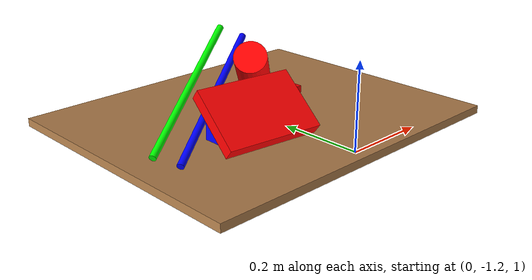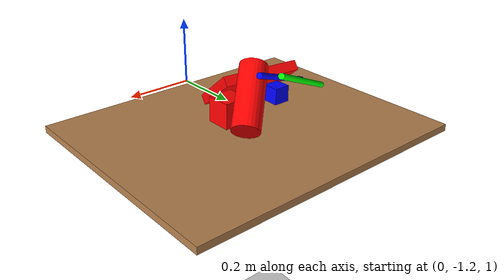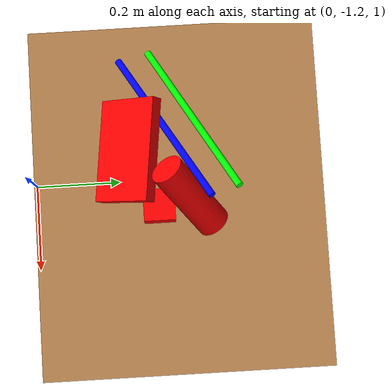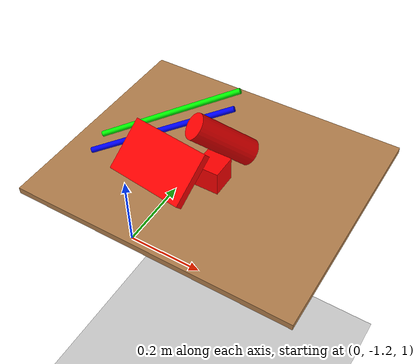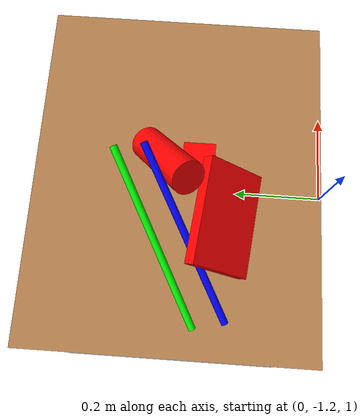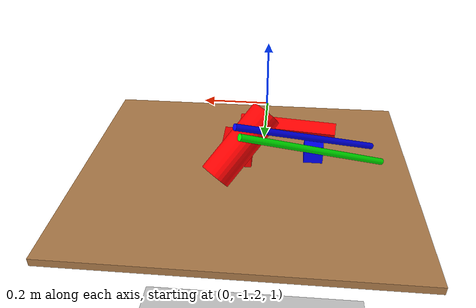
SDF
<sdf version="1.7">
 <world name="default">
  <model name="ground_plane">
   <static>1</static>
   <link name="link">
    <collision name="collision">
     <geometry><plane><normal>0 0 1</normal><size>100 100</size></plane></geometry>
     <surface><friction><ode><mu>100</mu><mu2>50</mu2></ode></friction></surface>
    </collision>
    <visual name="visual">
     <cast_shadows>0</cast_shadows>
     <geometry><plane><normal>0 0 1</normal><size>100 100</size></plane></geometry>
     <material>
      <script><uri>file://media/materials/scripts/gazebo.material</uri><name>Gazebo/Grey</name></script>
     </material>
    </visual>
   </link>
  </model>
  <model name="cube_b">
   <link name="link_2">
    <inertial>
     <mass>2</mass>
     <inertia>
      <ixx>0.00083333</ixx>
      <ixy>0</ixy>
      <ixz>0</ixz>
      <iyy>0.00083333</iyy>
      <iyz>0</iyz>
      <izz>0.00083333</izz>
     </inertia>
    </inertial>
    <visual name="visual">
     <geometry><box><size>0.05 0.05 0.05</size></box></geometry>
     <material>
      <lighting>1</lighting>
      <script><uri>file://media/materials/scripts/gazebo.material</uri><name>Gazebo/Grey</name></script>
      <ambient>0 0 1 1</ambient>
      <diffuse>0 0 1 1</diffuse>
      <specular>0 0 0 1</specular>
      <emissive>0 0 0 1</emissive>
      <shader type="vertex"><normal_map>__default__</normal_map></shader>
     </material>
    </visual>
    <collision name="collision">
     <geometry><box><size>0.05 0.05 0.05</size></box></geometry>
     <surface>
      <friction>
       <ode><mu>0.8</mu><mu2>0.8</mu2><fdir1>0 0 0</fdir1><slip1>0</slip1><slip2>0</slip2></ode>
       <torsional>
        <coefficient>1</coefficient>
        <patch_radius>0</patch_radius>
        <surface_radius>0</surface_radius>
        <use_patch_radius>1</use_patch_radius>
        <ode><slip>0</slip></ode>
       </torsional>
      </friction>
      <bounce><restitution_coefficient>0</restitution_coefficient><threshold>1e+06</threshold></bounce>
      <contact>
       <collide_without_contact>0</collide_without_contact>
       <collide_without_contact_bitmask>1</collide_without_contact_bitmask>
       <collide_bitmask>1</collide_bitmask>
       <ode>
        <soft_cfm>0.0001</soft_cfm>
        <soft_erp>0.4</soft_erp>
        <kp>1e+06</kp>
        <kd>10</kd>
        <max_vel>0.01</max_vel>
        <min_depth>0</min_depth>
       </ode>
      </contact>
     </surface>
    </collision>
   </link>
   <static>0</static>
   <allow_auto_disable>0</allow_auto_disable>
   <pose>-0.135099 -0.93034 1.00993 -1.56964 -0.004147 -0.007441</pose>
  </model>
  <model name="cube_r">
   <link name="link_2">
    <inertial>
     <mass>2</mass>
     <inertia>
      <ixx>0.001875</ixx>
      <ixy>0</ixy>
      <ixz>0</ixz>
      <iyy>0.001875</iyy>
      <iyz>0</iyz>
      <izz>0.001875</izz>
     </inertia>
    </inertial>
    <visual name="visual">
     <geometry><box><size>0.075 0.075 0.075</size></box></geometry>
     <material>
      <lighting>1</lighting>
      <script><uri>file://media/materials/scripts/gazebo.material</uri><name>Gazebo/Grey</name></script>
      <ambient>1 0 0 1</ambient>
      <diffuse>1 0 0 1</diffuse>
      <specular>0 0 0 1</specular>
      <emissive>0 0 0 1</emissive>
      <shader type="vertex"><normal_map>__default__</normal_map></shader>
     </material>
    </visual>
    <collision name="collision">
     <geometry><box><size>0.075 0.075 0.075</size></box></geometry>
     <surface>
      <friction>
       <ode><mu>0.8</mu><mu2>0.8</mu2><fdir1>0 0 0</fdir1><slip1>0</slip1><slip2>0</slip2></ode>
       <torsional>
        <coefficient>1</coefficient>
        <patch_radius>0</patch_radius>
        <surface_radius>0</surface_radius>
        <use_patch_radius>1</use_patch_radius>
        <ode><slip>0</slip></ode>
       </torsional>
      </friction>
      <bounce><restitution_coefficient>0</restitution_coefficient><threshold>1e+06</threshold></bounce>
      <contact>
       <collide_without_contact>0</collide_without_contact>
       <collide_without_contact_bitmask>1</collide_without_contact_bitmask>
       <collide_bitmask>1</collide_bitmask>
       <ode>
        <soft_cfm>0.0001</soft_cfm>
        <soft_erp>0.4</soft_erp>
        <kp>1e+06</kp>
        <kd>10</kd>
        <max_vel>0.01</max_vel>
        <min_depth>0</min_depth>
       </ode>
      </contact>
     </surface>
    </collision>
   </link>
   <static>0</static>
   <allow_auto_disable>0</allow_auto_disable>
   <pose>0.064542 -0.908899 1.02328 1.56663 -0.001117 1.5713</pose>
  </model>
  <model name="cylinder_r">
   <link name="link_0">
    <inertial>
     <mass>0.2</mass>
     <inertia>
      <ixx>0.000747</ixx>
      <ixy>0</ixy>
      <ixz>0</ixz>
      <iyy>0.000747</iyy>
      <iyz>0</iyz>
      <izz>0.00016</izz>
     </inertia>
    </inertial>
    <visual name="visual">
     <geometry><cylinder><radius>0.04</radius><length>0.2</length></cylinder></geometry>
     <material>
      <lighting>1</lighting>
      <script><uri>file://media/materials/scripts/gazebo.material</uri><name>Gazebo/Grey</name></script>
      <ambient>1 0 0 1</ambient>
      <diffuse>1 0 0 1</diffuse>
      <specular>0 0 0 1</specular>
      <emissive>0 0 0 1</emissive>
      <shader type="vertex"><normal_map>__default__</normal_map></shader>
     </material>
    </visual>
    <collision name="collision">
     <geometry><cylinder><radius>0.04</radius><length>0.2</length></cylinder></geometry>
     <surface>
      <friction>
       <ode><mu>0.5</mu><mu2>0.5</mu2><fdir1>0 0 0</fdir1><slip1>0</slip1><slip2>0</slip2></ode>
       <torsional>
        <coefficient>1</coefficient>
        <patch_radius>0</patch_radius>
        <surface_radius>0</surface_radius>
        <use_patch_radius>1</use_patch_radius>
        <ode><slip>0</slip></ode>
       </torsional>
      </friction>
      <bounce><restitution_coefficient>0</restitution_coefficient><threshold>1e+06</threshold></bounce>
      <contact>
       <collide_without_contact>0</collide_without_contact>
       <collide_without_contact_bitmask>1</collide_without_contact_bitmask>
       <collide_bitmask>1</collide_bitmask>
       <ode>
        <soft_cfm>0.0001</soft_cfm>
        <soft_erp>0.4</soft_erp>
        <kp>1e+06</kp>
        <kd>10</kd>
        <max_vel>0.01</max_vel>
        <min_depth>0</min_depth>
       </ode>
      </contact>
     </surface>
    </collision>
   </link>
   <static>0</static>
   <allow_auto_disable>0</allow_auto_disable>
   <pose>0.051241 -0.834675 1.07921 -0.903309 -0.078543 2.2357</pose>
  </model>
  <model name="cylinder_b">
   <link name="link_0">
    <inertial>
     <mass>0.2</mass>
     <inertia><ixx>0.00331</ixx><ixy>0</ixy><ixz>0</ixz><iyy>0.00331</iyy><iyz>0</iyz><izz>7.11e-06</izz></inertia>
    </inertial>
    <visual name="visual">
     <geometry><cylinder><radius>0.00843157</radius><length>0.445034</length></cylinder></geometry>
     <material>
      <lighting>1</lighting>
      <ambient>0 0 1 1</ambient>
      <diffuse>0 0 1 1</diffuse>
      <specular>0.1 0.1 0.1 1</specular>
      <emissive>0 0 0 1</emissive>
      <shader type="vertex"><normal_map>__default__</normal_map></shader>
     </material>
    </visual>
    <collision name="collision">
     <geometry><cylinder><radius>0.008432</radius><length>0.445034</length></cylinder></geometry>
     <surface>
      <friction>
       <ode><mu>0.4</mu><mu2>0.4</mu2><fdir1>0 0 0</fdir1><slip1>0</slip1><slip2>0</slip2></ode>
       <torsional>
        <coefficient>1</coefficient>
        <patch_radius>0</patch_radius>
        <surface_radius>0</surface_radius>
        <use_patch_radius>1</use_patch_radius>
        <ode><slip>0</slip></ode>
       </torsional>
      </friction>
      <bounce><restitution_coefficient>0</restitution_coefficient><threshold>1e+06</threshold></bounce>
      <contact>
       <collide_without_contact>0</collide_without_contact>
       <collide_without_contact_bitmask>1</collide_without_contact_bitmask>
       <collide_bitmask>1</collide_bitmask>
       <ode>
        <soft_cfm>0.0001</soft_cfm>
        <soft_erp>0.4</soft_erp>
        <kp>1e+06</kp>
        <kd>10</kd>
        <max_vel>0.01</max_vel>
        <min_depth>0</min_depth>
       </ode>
      </contact>
     </surface>
    </collision>
   </link>
   <static>0</static>
   <allow_auto_disable>0</allow_auto_disable>
   <pose>-0.11941 -0.888291 1.07566 -1.99041 -0.395624 2.25549</pose>
  </model>
  <model name="cylinder_g">
   <link name="link_0">
    <inertial>
     <mass>0.2</mass>
     <inertia><ixx>0.00331</ixx><ixy>0</ixy><ixz>0</ixz><iyy>0.00331</iyy><iyz>0</iyz><izz>7.11e-06</izz></inertia>
    </inertial>
    <visual name="visual">
     <geometry><cylinder><radius>0.00843157</radius><length>0.445034</length></cylinder></geometry>
     <material>
      <lighting>1</lighting>
      <ambient>0 1 0 1</ambient>
      <diffuse>0 1 0 1</diffuse>
      <specular>0.1 0.1 0.1 1</specular>
      <emissive>0 0 0 1</emissive>
      <shader type="vertex"><normal_map>__default__</normal_map></shader>
     </material>
    </visual>
    <collision name="collision">
     <geometry><cylinder><radius>0.008432</radius><length>0.445034</length></cylinder></geometry>
     <surface>
      <friction>
       <ode><mu>0.5</mu><mu2>0.5</mu2><fdir1>0 0 0</fdir1><slip1>0</slip1><slip2>0</slip2></ode>
       <torsional>
        <coefficient>1</coefficient>
        <patch_radius>0</patch_radius>
        <surface_radius>0</surface_radius>
        <use_patch_radius>1</use_patch_radius>
        <ode><slip>0</slip></ode>
       </torsional>
      </friction>
      <bounce><restitution_coefficient>0</restitution_coefficient><threshold>1e+06</threshold></bounce>
      <contact>
       <collide_without_contact>0</collide_without_contact>
       <collide_without_contact_bitmask>1</collide_without_contact_bitmask>
       <collide_bitmask>1</collide_bitmask>
       <ode>
        <soft_cfm>0.0001</soft_cfm>
        <soft_erp>0.4</soft_erp>
        <kp>1e+06</kp>
        <kd>10</kd>
        <max_vel>0.01</max_vel>
        <min_depth>0</min_depth>
       </ode>
      </contact>
     </surface>
    </collision>
   </link>
   <static>0</static>
   <allow_auto_disable>0</allow_auto_disable>
   <pose>-0.136236 -0.820651 1.08207 -2.00826 -0.296584 2.19987</pose>
  </model>
  <model name="cuboid_r">
   <link name="link">
    <inertial>
     <mass>2</mass>
     <inertia><ixx>0.00442</ixx><iyy>0.0101</iyy><izz>0.0143</izz><ixy>0</ixy><ixz>0</ixz><iyz>0</iyz></inertia>
    </inertial>
    <visual name="visual">
     <geometry><box><size>0.245 0.16 0.03</size></box></geometry>
     <material><ambient>1 0 0 1</ambient><diffuse>1 0 0 1</diffuse><specular>0.1 0.1 0.1 1</specular></material>
    </visual>
    <collision name="collision">
     <geometry><box><size>0.245 0.16 0.03</size></box></geometry>
     <surface>
      <friction>
       <ode><mu>0.6</mu><mu2>0.6</mu2><fdir1>0 0 0</fdir1><slip1>0</slip1><slip2>0</slip2></ode>
       <torsional>
        <coefficient>1</coefficient>
        <patch_radius>0</patch_radius>
        <surface_radius>0</surface_radius>
        <use_patch_radius>1</use_patch_radius>
        <ode><slip>0</slip></ode>
       </torsional>
      </friction>
      <bounce><restitution_coefficient>0</restitution_coefficient><threshold>1e+06</threshold></bounce>
      <contact>
       <collide_without_contact>0</collide_without_contact>
       <collide_without_contact_bitmask>1</collide_without_contact_bitmask>
       <collide_bitmask>1</collide_bitmask>
       <ode>
        <soft_cfm>0.0001</soft_cfm>
        <soft_erp>0.4</soft_erp>
        <kp>1e+06</kp>
        <kd>10</kd>
        <max_vel>0.01</max_vel>
        <min_depth>0</min_depth>
       </ode>
      </contact>
     </surface>
    </collision>
   </link>
   <static>0</static>
   <allow_auto_disable>0</allow_auto_disable>
   <pose>-0.069319 -0.975883 1.04676 2.46664 0.003986 3.02086</pose>
  </model>
  <model name="workspace">
   <link name="link">
    <inertial>
     <mass>100</mass>
     <inertia><ixx>6.02417</ixx><ixy>0</ixy><ixz>0</ixz><iyy>4.08667</iyy><iyz>0</iyz><izz>10.1042</izz></inertia>
    </inertial>
    <visual name="visual">
     <geometry><box><size>0.7 0.85 0.02</size></box></geometry>
     <material>
      <script><name>Gazebo/Wood</name><uri>file://media/materials/scripts/gazebo.material</uri></script>
      <shader type="pixel"/>
     </material>
    </visual>
    <collision name="collision">
     <geometry><box><size>0.7 0.85 0.02</size></box></geometry>
     <surface>
      <friction>
       <ode><mu>100</mu><mu2>50</mu2><fdir1>0 0 0</fdir1><slip1>0</slip1><slip2>0</slip2></ode>
       <torsional>
        <coefficient>1</coefficient>
        <patch_radius>0</patch_radius>
        <surface_radius>0</surface_radius>
        <use_patch_radius>1</use_patch_radius>
        <ode><slip>0</slip></ode>
       </torsional>
      </friction>
      <bounce><restitution_coefficient>0</restitution_coefficient><threshold>1e+06</threshold></bounce>
      <contact>
       <collide_without_contact>0</collide_without_contact>
       <collide_without_contact_bitmask>1</collide_without_contact_bitmask>
       <collide_bitmask>1</collide_bitmask>
       <ode>
        <soft_cfm>0.0001</soft_cfm>
        <soft_erp>0.2</soft_erp>
        <kp>1e+13</kp>
        <kd>10</kd>
        <max_vel>0.01</max_vel>
        <min_depth>0</min_depth>
       </ode>
       <bullet>
        <split_impulse>1</split_impulse>
        <split_impulse_penetration_threshold>-0.01</split_impulse_penetration_threshold>
        <soft_cfm>0</soft_cfm>
        <soft_erp>0.2</soft_erp>
        <kp>1e+13</kp>
        <kd>1</kd>
       </bullet>
      </contact>
     </surface>
    </collision>
   </link>
   <static>1</static>
   <pose>0.0416 -0.859914 0.975746 -0.004154 -0.001127 1.57039</pose>
  </model>
 </world>
</sdf>
